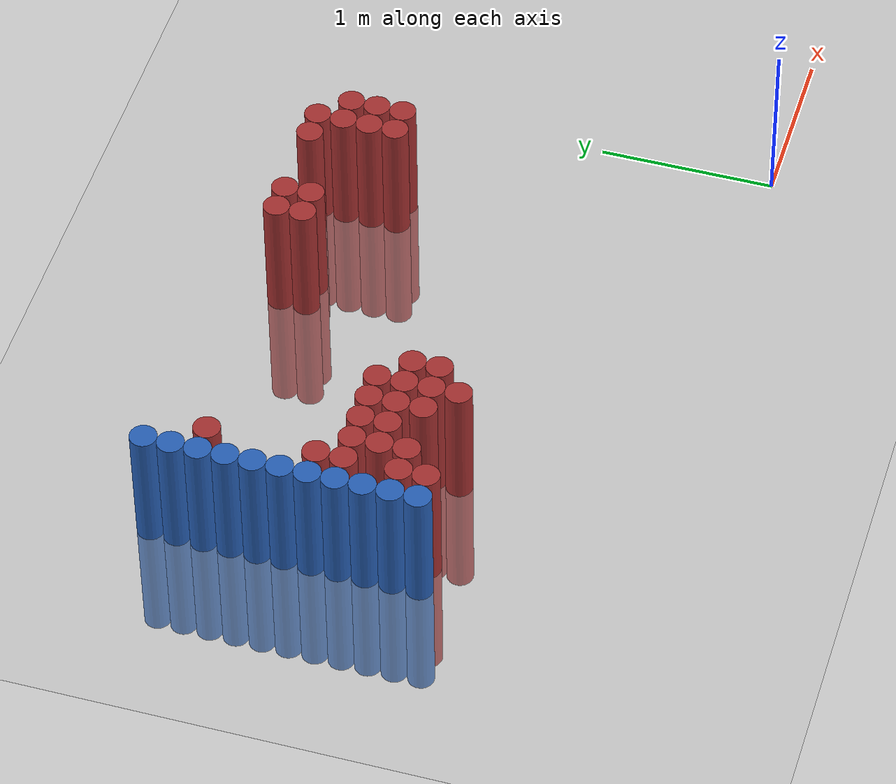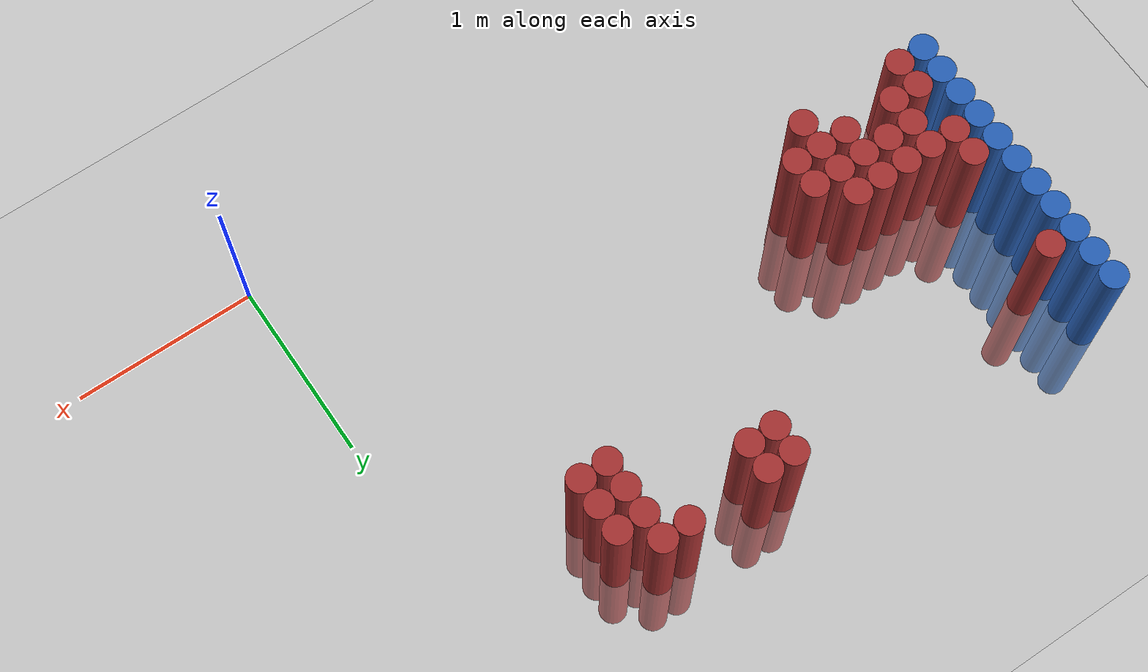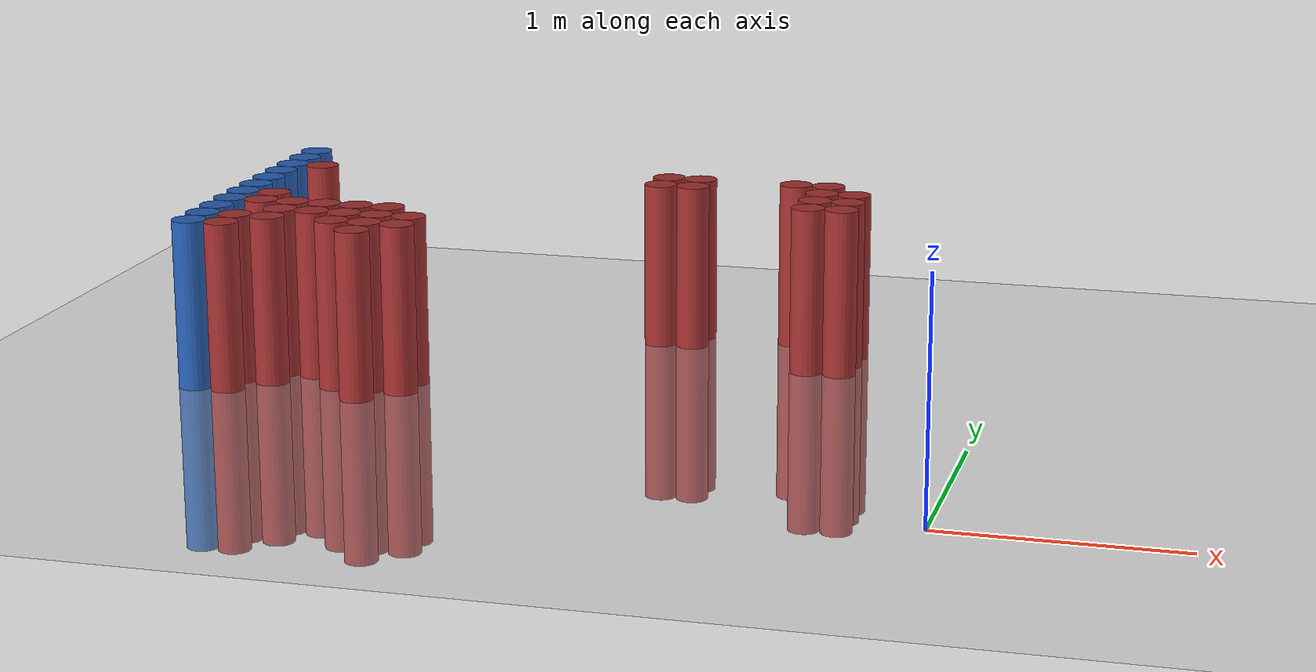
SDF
<sdf version="1.6">
 <world name="default">
  <model name="ground_plane">
   <static>1</static>
   <link name="link">
    <collision name="collision">
     <geometry><plane><normal>0 0 1</normal><size>100 100</size></plane></geometry>
     <surface><friction><ode><mu>100</mu><mu2>50</mu2></ode></friction></surface>
    </collision>
    <visual name="visual">
     <cast_shadows>0</cast_shadows>
     <geometry><plane><normal>0 0 1</normal><size>100 100</size></plane></geometry>
     <material>
      <script><uri>file://media/materials/scripts/gazebo.material</uri><name>Gazebo/Grey</name></script>
     </material>
    </visual>
   </link>
  </model>
  <model name="unit_cylinder_129">
   <static>1</static>
   <pose>-3.425000 1.075000 0.000000 0.000000 0.000000 0.000000</pose>
   <link name="link">
    <inertial>
     <mass>1</mass>
     <inertia><ixx>0.145833</ixx><ixy>0</ixy><ixz>0</ixz><iyy>0.145833</iyy><iyz>0</iyz><izz>0.125</izz></inertia>
    </inertial>
    <collision name="collision">
     <geometry><cylinder><radius>0.075000</radius><length>1.5</length></cylinder></geometry>
    </collision>
    <visual name="visual">
     <geometry><cylinder><radius>0.075000</radius><length>1.5</length></cylinder></geometry>
     <material>
      <ambient>0.152000 0.379000 0.720000 1</ambient>
      <diffuse>0.152000 0.379000 0.720000 1</diffuse>
     </material>
     <material>
      <script><name>Gazebo/Grey</name><uri>file://media/materials/scripts/gazebo.material</uri></script>
     </material>
    </visual>
   </link>
  </model>
  <model name="unit_cylinder_131">
   <static>1</static>
   <pose>-3.425000 1.225000 0.000000 0.000000 0.000000 0.000000</pose>
   <link name="link">
    <inertial>
     <mass>1</mass>
     <inertia><ixx>0.145833</ixx><ixy>0</ixy><ixz>0</ixz><iyy>0.145833</iyy><iyz>0</iyz><izz>0.125</izz></inertia>
    </inertial>
    <collision name="collision">
     <geometry><cylinder><radius>0.075000</radius><length>1.5</length></cylinder></geometry>
    </collision>
    <visual name="visual">
     <geometry><cylinder><radius>0.075000</radius><length>1.5</length></cylinder></geometry>
     <material>
      <ambient>0.152000 0.379000 0.720000 1</ambient>
      <diffuse>0.152000 0.379000 0.720000 1</diffuse>
     </material>
     <material>
      <script><name>Gazebo/Grey</name><uri>file://media/materials/scripts/gazebo.material</uri></script>
     </material>
    </visual>
   </link>
  </model>
  <model name="unit_cylinder_133">
   <static>1</static>
   <pose>-3.425000 1.375000 0.000000 0.000000 0.000000 0.000000</pose>
   <link name="link">
    <inertial>
     <mass>1</mass>
     <inertia><ixx>0.145833</ixx><ixy>0</ixy><ixz>0</ixz><iyy>0.145833</iyy><iyz>0</iyz><izz>0.125</izz></inertia>
    </inertial>
    <collision name="collision">
     <geometry><cylinder><radius>0.075000</radius><length>1.5</length></cylinder></geometry>
    </collision>
    <visual name="visual">
     <geometry><cylinder><radius>0.075000</radius><length>1.5</length></cylinder></geometry>
     <material>
      <ambient>0.152000 0.379000 0.720000 1</ambient>
      <diffuse>0.152000 0.379000 0.720000 1</diffuse>
     </material>
     <material>
      <script><name>Gazebo/Grey</name><uri>file://media/materials/scripts/gazebo.material</uri></script>
     </material>
    </visual>
   </link>
  </model>
  <model name="unit_cylinder_135">
   <static>1</static>
   <pose>-3.425000 1.525000 0.000000 0.000000 0.000000 0.000000</pose>
   <link name="link">
    <inertial>
     <mass>1</mass>
     <inertia><ixx>0.145833</ixx><ixy>0</ixy><ixz>0</ixz><iyy>0.145833</iyy><iyz>0</iyz><izz>0.125</izz></inertia>
    </inertial>
    <collision name="collision">
     <geometry><cylinder><radius>0.075000</radius><length>1.5</length></cylinder></geometry>
    </collision>
    <visual name="visual">
     <geometry><cylinder><radius>0.075000</radius><length>1.5</length></cylinder></geometry>
     <material>
      <ambient>0.152000 0.379000 0.720000 1</ambient>
      <diffuse>0.152000 0.379000 0.720000 1</diffuse>
     </material>
     <material>
      <script><name>Gazebo/Grey</name><uri>file://media/materials/scripts/gazebo.material</uri></script>
     </material>
    </visual>
   </link>
  </model>
  <model name="unit_cylinder_137">
   <static>1</static>
   <pose>-3.425000 1.675000 0.000000 0.000000 0.000000 0.000000</pose>
   <link name="link">
    <inertial>
     <mass>1</mass>
     <inertia><ixx>0.145833</ixx><ixy>0</ixy><ixz>0</ixz><iyy>0.145833</iyy><iyz>0</iyz><izz>0.125</izz></inertia>
    </inertial>
    <collision name="collision">
     <geometry><cylinder><radius>0.075000</radius><length>1.5</length></cylinder></geometry>
    </collision>
    <visual name="visual">
     <geometry><cylinder><radius>0.075000</radius><length>1.5</length></cylinder></geometry>
     <material>
      <ambient>0.152000 0.379000 0.720000 1</ambient>
      <diffuse>0.152000 0.379000 0.720000 1</diffuse>
     </material>
     <material>
      <script><name>Gazebo/Grey</name><uri>file://media/materials/scripts/gazebo.material</uri></script>
     </material>
    </visual>
   </link>
  </model>
  <model name="unit_cylinder_139">
   <static>1</static>
   <pose>-3.425000 1.825000 0.000000 0.000000 0.000000 0.000000</pose>
   <link name="link">
    <inertial>
     <mass>1</mass>
     <inertia><ixx>0.145833</ixx><ixy>0</ixy><ixz>0</ixz><iyy>0.145833</iyy><iyz>0</iyz><izz>0.125</izz></inertia>
    </inertial>
    <collision name="collision">
     <geometry><cylinder><radius>0.075000</radius><length>1.5</length></cylinder></geometry>
    </collision>
    <visual name="visual">
     <geometry><cylinder><radius>0.075000</radius><length>1.5</length></cylinder></geometry>
     <material>
      <ambient>0.152000 0.379000 0.720000 1</ambient>
      <diffuse>0.152000 0.379000 0.720000 1</diffuse>
     </material>
     <material>
      <script><name>Gazebo/Grey</name><uri>file://media/materials/scripts/gazebo.material</uri></script>
     </material>
    </visual>
   </link>
  </model>
  <model name="unit_cylinder_141">
   <static>1</static>
   <pose>-3.425000 1.975000 0.000000 0.000000 0.000000 0.000000</pose>
   <link name="link">
    <inertial>
     <mass>1</mass>
     <inertia><ixx>0.145833</ixx><ixy>0</ixy><ixz>0</ixz><iyy>0.145833</iyy><iyz>0</iyz><izz>0.125</izz></inertia>
    </inertial>
    <collision name="collision">
     <geometry><cylinder><radius>0.075000</radius><length>1.5</length></cylinder></geometry>
    </collision>
    <visual name="visual">
     <geometry><cylinder><radius>0.075000</radius><length>1.5</length></cylinder></geometry>
     <material>
      <ambient>0.152000 0.379000 0.720000 1</ambient>
      <diffuse>0.152000 0.379000 0.720000 1</diffuse>
     </material>
     <material>
      <script><name>Gazebo/Grey</name><uri>file://media/materials/scripts/gazebo.material</uri></script>
     </material>
    </visual>
   </link>
  </model>
  <model name="unit_cylinder_143">
   <static>1</static>
   <pose>-3.425000 2.125000 0.000000 0.000000 0.000000 0.000000</pose>
   <link name="link">
    <inertial>
     <mass>1</mass>
     <inertia><ixx>0.145833</ixx><ixy>0</ixy><ixz>0</ixz><iyy>0.145833</iyy><iyz>0</iyz><izz>0.125</izz></inertia>
    </inertial>
    <collision name="collision">
     <geometry><cylinder><radius>0.075000</radius><length>1.5</length></cylinder></geometry>
    </collision>
    <visual name="visual">
     <geometry><cylinder><radius>0.075000</radius><length>1.5</length></cylinder></geometry>
     <material>
      <ambient>0.152000 0.379000 0.720000 1</ambient>
      <diffuse>0.152000 0.379000 0.720000 1</diffuse>
     </material>
     <material>
      <script><name>Gazebo/Grey</name><uri>file://media/materials/scripts/gazebo.material</uri></script>
     </material>
    </visual>
   </link>
  </model>
  <model name="unit_cylinder_145">
   <static>1</static>
   <pose>-3.425000 2.275000 0.000000 0.000000 0.000000 0.000000</pose>
   <link name="link">
    <inertial>
     <mass>1</mass>
     <inertia><ixx>0.145833</ixx><ixy>0</ixy><ixz>0</ixz><iyy>0.145833</iyy><iyz>0</iyz><izz>0.125</izz></inertia>
    </inertial>
    <collision name="collision">
     <geometry><cylinder><radius>0.075000</radius><length>1.5</length></cylinder></geometry>
    </collision>
    <visual name="visual">
     <geometry><cylinder><radius>0.075000</radius><length>1.5</length></cylinder></geometry>
     <material>
      <ambient>0.152000 0.379000 0.720000 1</ambient>
      <diffuse>0.152000 0.379000 0.720000 1</diffuse>
     </material>
     <material>
      <script><name>Gazebo/Grey</name><uri>file://media/materials/scripts/gazebo.material</uri></script>
     </material>
    </visual>
   </link>
  </model>
  <model name="unit_cylinder_147">
   <static>1</static>
   <pose>-3.425000 2.425000 0.000000 0.000000 0.000000 0.000000</pose>
   <link name="link">
    <inertial>
     <mass>1</mass>
     <inertia><ixx>0.145833</ixx><ixy>0</ixy><ixz>0</ixz><iyy>0.145833</iyy><iyz>0</iyz><izz>0.125</izz></inertia>
    </inertial>
    <collision name="collision">
     <geometry><cylinder><radius>0.075000</radius><length>1.5</length></cylinder></geometry>
    </collision>
    <visual name="visual">
     <geometry><cylinder><radius>0.075000</radius><length>1.5</length></cylinder></geometry>
     <material>
      <ambient>0.152000 0.379000 0.720000 1</ambient>
      <diffuse>0.152000 0.379000 0.720000 1</diffuse>
     </material>
     <material>
      <script><name>Gazebo/Grey</name><uri>file://media/materials/scripts/gazebo.material</uri></script>
     </material>
    </visual>
   </link>
  </model>
  <model name="unit_cylinder_149">
   <static>1</static>
   <pose>-3.425000 2.575000 0.000000 0.000000 0.000000 0.000000</pose>
   <link name="link">
    <inertial>
     <mass>1</mass>
     <inertia><ixx>0.145833</ixx><ixy>0</ixy><ixz>0</ixz><iyy>0.145833</iyy><iyz>0</iyz><izz>0.125</izz></inertia>
    </inertial>
    <collision name="collision">
     <geometry><cylinder><radius>0.075000</radius><length>1.5</length></cylinder></geometry>
    </collision>
    <visual name="visual">
     <geometry><cylinder><radius>0.075000</radius><length>1.5</length></cylinder></geometry>
     <material>
      <ambient>0.152000 0.379000 0.720000 1</ambient>
      <diffuse>0.152000 0.379000 0.720000 1</diffuse>
     </material>
     <material>
      <script><name>Gazebo/Grey</name><uri>file://media/materials/scripts/gazebo.material</uri></script>
     </material>
    </visual>
   </link>
  </model>
  <model name="unit_cylinder_228">
   <static>1</static>
   <pose>-3.425000 1.075000 0.000000 0.000000 0.000000 0.000000</pose>
   <link name="link">
    <inertial>
     <mass>1</mass>
     <inertia><ixx>0.145833</ixx><ixy>0</ixy><ixz>0</ixz><iyy>0.145833</iyy><iyz>0</iyz><izz>0.125</izz></inertia>
    </inertial>
    <collision name="collision">
     <geometry><cylinder><radius>0.075000</radius><length>1.5</length></cylinder></geometry>
    </collision>
    <visual name="visual">
     <geometry><cylinder><radius>0.075000</radius><length>1.5</length></cylinder></geometry>
     <material>
      <ambient>0.152000 0.379000 0.720000 1</ambient>
      <diffuse>0.152000 0.379000 0.720000 1</diffuse>
     </material>
     <material>
      <script><name>Gazebo/Grey</name><uri>file://media/materials/scripts/gazebo.material</uri></script>
     </material>
    </visual>
   </link>
  </model>
  <model name="unit_cylinder_229">
   <static>1</static>
   <pose>-3.425000 1.225000 0.000000 0.000000 0.000000 0.000000</pose>
   <link name="link">
    <inertial>
     <mass>1</mass>
     <inertia><ixx>0.145833</ixx><ixy>0</ixy><ixz>0</ixz><iyy>0.145833</iyy><iyz>0</iyz><izz>0.125</izz></inertia>
    </inertial>
    <collision name="collision">
     <geometry><cylinder><radius>0.075000</radius><length>1.5</length></cylinder></geometry>
    </collision>
    <visual name="visual">
     <geometry><cylinder><radius>0.075000</radius><length>1.5</length></cylinder></geometry>
     <material>
      <ambient>0.152000 0.379000 0.720000 1</ambient>
      <diffuse>0.152000 0.379000 0.720000 1</diffuse>
     </material>
     <material>
      <script><name>Gazebo/Grey</name><uri>file://media/materials/scripts/gazebo.material</uri></script>
     </material>
    </visual>
   </link>
  </model>
  <model name="unit_cylinder_230">
   <static>1</static>
   <pose>-3.425000 1.375000 0.000000 0.000000 0.000000 0.000000</pose>
   <link name="link">
    <inertial>
     <mass>1</mass>
     <inertia><ixx>0.145833</ixx><ixy>0</ixy><ixz>0</ixz><iyy>0.145833</iyy><iyz>0</iyz><izz>0.125</izz></inertia>
    </inertial>
    <collision name="collision">
     <geometry><cylinder><radius>0.075000</radius><length>1.5</length></cylinder></geometry>
    </collision>
    <visual name="visual">
     <geometry><cylinder><radius>0.075000</radius><length>1.5</length></cylinder></geometry>
     <material>
      <ambient>0.152000 0.379000 0.720000 1</ambient>
      <diffuse>0.152000 0.379000 0.720000 1</diffuse>
     </material>
     <material>
      <script><name>Gazebo/Grey</name><uri>file://media/materials/scripts/gazebo.material</uri></script>
     </material>
    </visual>
   </link>
  </model>
  <model name="unit_cylinder_231">
   <static>1</static>
   <pose>-3.425000 1.525000 0.000000 0.000000 0.000000 0.000000</pose>
   <link name="link">
    <inertial>
     <mass>1</mass>
     <inertia><ixx>0.145833</ixx><ixy>0</ixy><ixz>0</ixz><iyy>0.145833</iyy><iyz>0</iyz><izz>0.125</izz></inertia>
    </inertial>
    <collision name="collision">
     <geometry><cylinder><radius>0.075000</radius><length>1.5</length></cylinder></geometry>
    </collision>
    <visual name="visual">
     <geometry><cylinder><radius>0.075000</radius><length>1.5</length></cylinder></geometry>
     <material>
      <ambient>0.152000 0.379000 0.720000 1</ambient>
      <diffuse>0.152000 0.379000 0.720000 1</diffuse>
     </material>
     <material>
      <script><name>Gazebo/Grey</name><uri>file://media/materials/scripts/gazebo.material</uri></script>
     </material>
    </visual>
   </link>
  </model>
  <model name="unit_cylinder_232">
   <static>1</static>
   <pose>-3.425000 1.675000 0.000000 0.000000 0.000000 0.000000</pose>
   <link name="link">
    <inertial>
     <mass>1</mass>
     <inertia><ixx>0.145833</ixx><ixy>0</ixy><ixz>0</ixz><iyy>0.145833</iyy><iyz>0</iyz><izz>0.125</izz></inertia>
    </inertial>
    <collision name="collision">
     <geometry><cylinder><radius>0.075000</radius><length>1.5</length></cylinder></geometry>
    </collision>
    <visual name="visual">
     <geometry><cylinder><radius>0.075000</radius><length>1.5</length></cylinder></geometry>
     <material>
      <ambient>0.152000 0.379000 0.720000 1</ambient>
      <diffuse>0.152000 0.379000 0.720000 1</diffuse>
     </material>
     <material>
      <script><name>Gazebo/Grey</name><uri>file://media/materials/scripts/gazebo.material</uri></script>
     </material>
    </visual>
   </link>
  </model>
  <model name="unit_cylinder_233">
   <static>1</static>
   <pose>-3.425000 1.825000 0.000000 0.000000 0.000000 0.000000</pose>
   <link name="link">
    <inertial>
     <mass>1</mass>
     <inertia><ixx>0.145833</ixx><ixy>0</ixy><ixz>0</ixz><iyy>0.145833</iyy><iyz>0</iyz><izz>0.125</izz></inertia>
    </inertial>
    <collision name="collision">
     <geometry><cylinder><radius>0.075000</radius><length>1.5</length></cylinder></geometry>
    </collision>
    <visual name="visual">
     <geometry><cylinder><radius>0.075000</radius><length>1.5</length></cylinder></geometry>
     <material>
      <ambient>0.152000 0.379000 0.720000 1</ambient>
      <diffuse>0.152000 0.379000 0.720000 1</diffuse>
     </material>
     <material>
      <script><name>Gazebo/Grey</name><uri>file://media/materials/scripts/gazebo.material</uri></script>
     </material>
    </visual>
   </link>
  </model>
  <model name="unit_cylinder_234">
   <static>1</static>
   <pose>-3.425000 1.975000 0.000000 0.000000 0.000000 0.000000</pose>
   <link name="link">
    <inertial>
     <mass>1</mass>
     <inertia><ixx>0.145833</ixx><ixy>0</ixy><ixz>0</ixz><iyy>0.145833</iyy><iyz>0</iyz><izz>0.125</izz></inertia>
    </inertial>
    <collision name="collision">
     <geometry><cylinder><radius>0.075000</radius><length>1.5</length></cylinder></geometry>
    </collision>
    <visual name="visual">
     <geometry><cylinder><radius>0.075000</radius><length>1.5</length></cylinder></geometry>
     <material>
      <ambient>0.152000 0.379000 0.720000 1</ambient>
      <diffuse>0.152000 0.379000 0.720000 1</diffuse>
     </material>
     <material>
      <script><name>Gazebo/Grey</name><uri>file://media/materials/scripts/gazebo.material</uri></script>
     </material>
    </visual>
   </link>
  </model>
  <model name="unit_cylinder_235">
   <static>1</static>
   <pose>-3.425000 2.125000 0.000000 0.000000 0.000000 0.000000</pose>
   <link name="link">
    <inertial>
     <mass>1</mass>
     <inertia><ixx>0.145833</ixx><ixy>0</ixy><ixz>0</ixz><iyy>0.145833</iyy><iyz>0</iyz><izz>0.125</izz></inertia>
    </inertial>
    <collision name="collision">
     <geometry><cylinder><radius>0.075000</radius><length>1.5</length></cylinder></geometry>
    </collision>
    <visual name="visual">
     <geometry><cylinder><radius>0.075000</radius><length>1.5</length></cylinder></geometry>
     <material>
      <ambient>0.152000 0.379000 0.720000 1</ambient>
      <diffuse>0.152000 0.379000 0.720000 1</diffuse>
     </material>
     <material>
      <script><name>Gazebo/Grey</name><uri>file://media/materials/scripts/gazebo.material</uri></script>
     </material>
    </visual>
   </link>
  </model>
  <model name="unit_cylinder_236">
   <static>1</static>
   <pose>-3.425000 2.275000 0.000000 0.000000 0.000000 0.000000</pose>
   <link name="link">
    <inertial>
     <mass>1</mass>
     <inertia><ixx>0.145833</ixx><ixy>0</ixy><ixz>0</ixz><iyy>0.145833</iyy><iyz>0</iyz><izz>0.125</izz></inertia>
    </inertial>
    <collision name="collision">
     <geometry><cylinder><radius>0.075000</radius><length>1.5</length></cylinder></geometry>
    </collision>
    <visual name="visual">
     <geometry><cylinder><radius>0.075000</radius><length>1.5</length></cylinder></geometry>
     <material>
      <ambient>0.152000 0.379000 0.720000 1</ambient>
      <diffuse>0.152000 0.379000 0.720000 1</diffuse>
     </material>
     <material>
      <script><name>Gazebo/Grey</name><uri>file://media/materials/scripts/gazebo.material</uri></script>
     </material>
    </visual>
   </link>
  </model>
  <model name="unit_cylinder_237">
   <static>1</static>
   <pose>-3.425000 2.425000 0.000000 0.000000 0.000000 0.000000</pose>
   <link name="link">
    <inertial>
     <mass>1</mass>
     <inertia><ixx>0.145833</ixx><ixy>0</ixy><ixz>0</ixz><iyy>0.145833</iyy><iyz>0</iyz><izz>0.125</izz></inertia>
    </inertial>
    <collision name="collision">
     <geometry><cylinder><radius>0.075000</radius><length>1.5</length></cylinder></geometry>
    </collision>
    <visual name="visual">
     <geometry><cylinder><radius>0.075000</radius><length>1.5</length></cylinder></geometry>
     <material>
      <ambient>0.152000 0.379000 0.720000 1</ambient>
      <diffuse>0.152000 0.379000 0.720000 1</diffuse>
     </material>
     <material>
      <script><name>Gazebo/Grey</name><uri>file://media/materials/scripts/gazebo.material</uri></script>
     </material>
    </visual>
   </link>
  </model>
  <model name="unit_cylinder_238">
   <static>1</static>
   <pose>-3.425000 2.575000 0.000000 0.000000 0.000000 0.000000</pose>
   <link name="link">
    <inertial>
     <mass>1</mass>
     <inertia><ixx>0.145833</ixx><ixy>0</ixy><ixz>0</ixz><iyy>0.145833</iyy><iyz>0</iyz><izz>0.125</izz></inertia>
    </inertial>
    <collision name="collision">
     <geometry><cylinder><radius>0.075000</radius><length>1.5</length></cylinder></geometry>
    </collision>
    <visual name="visual">
     <geometry><cylinder><radius>0.075000</radius><length>1.5</length></cylinder></geometry>
     <material>
      <ambient>0.152000 0.379000 0.720000 1</ambient>
      <diffuse>0.152000 0.379000 0.720000 1</diffuse>
     </material>
     <material>
      <script><name>Gazebo/Grey</name><uri>file://media/materials/scripts/gazebo.material</uri></script>
     </material>
    </visual>
   </link>
  </model>
  <model name="unit_cylinder_266">
   <static>1</static>
   <pose>-3.275000 1.075000 0.000000 0.000000 0.000000 0.000000</pose>
   <link name="link">
    <inertial>
     <mass>1</mass>
     <inertia><ixx>0.145833</ixx><ixy>0</ixy><ixz>0</ixz><iyy>0.145833</iyy><iyz>0</iyz><izz>0.125</izz></inertia>
    </inertial>
    <collision name="collision">
     <geometry><cylinder><radius>0.075000</radius><length>1.5</length></cylinder></geometry>
    </collision>
    <visual name="visual">
     <geometry><cylinder><radius>0.075000</radius><length>1.5</length></cylinder></geometry>
     <material>
      <ambient>0.648000 0.192000 0.192000 1</ambient>
      <diffuse>0.648000 0.192000 0.192000 1</diffuse>
     </material>
     <material>
      <script><name>Gazebo/Grey</name><uri>file://media/materials/scripts/gazebo.material</uri></script>
     </material>
    </visual>
   </link>
  </model>
  <model name="unit_cylinder_267">
   <static>1</static>
   <pose>-3.275000 1.225000 0.000000 0.000000 0.000000 0.000000</pose>
   <link name="link">
    <inertial>
     <mass>1</mass>
     <inertia><ixx>0.145833</ixx><ixy>0</ixy><ixz>0</ixz><iyy>0.145833</iyy><iyz>0</iyz><izz>0.125</izz></inertia>
    </inertial>
    <collision name="collision">
     <geometry><cylinder><radius>0.075000</radius><length>1.5</length></cylinder></geometry>
    </collision>
    <visual name="visual">
     <geometry><cylinder><radius>0.075000</radius><length>1.5</length></cylinder></geometry>
     <material>
      <ambient>0.648000 0.192000 0.192000 1</ambient>
      <diffuse>0.648000 0.192000 0.192000 1</diffuse>
     </material>
     <material>
      <script><name>Gazebo/Grey</name><uri>file://media/materials/scripts/gazebo.material</uri></script>
     </material>
    </visual>
   </link>
  </model>
  <model name="unit_cylinder_268">
   <static>1</static>
   <pose>-3.275000 1.525000 0.000000 0.000000 0.000000 0.000000</pose>
   <link name="link">
    <inertial>
     <mass>1</mass>
     <inertia><ixx>0.145833</ixx><ixy>0</ixy><ixz>0</ixz><iyy>0.145833</iyy><iyz>0</iyz><izz>0.125</izz></inertia>
    </inertial>
    <collision name="collision">
     <geometry><cylinder><radius>0.075000</radius><length>1.5</length></cylinder></geometry>
    </collision>
    <visual name="visual">
     <geometry><cylinder><radius>0.075000</radius><length>1.5</length></cylinder></geometry>
     <material>
      <ambient>0.648000 0.192000 0.192000 1</ambient>
      <diffuse>0.648000 0.192000 0.192000 1</diffuse>
     </material>
     <material>
      <script><name>Gazebo/Grey</name><uri>file://media/materials/scripts/gazebo.material</uri></script>
     </material>
    </visual>
   </link>
  </model>
  <model name="unit_cylinder_269">
   <static>1</static>
   <pose>-3.275000 1.675000 0.000000 0.000000 0.000000 0.000000</pose>
   <link name="link">
    <inertial>
     <mass>1</mass>
     <inertia><ixx>0.145833</ixx><ixy>0</ixy><ixz>0</ixz><iyy>0.145833</iyy><iyz>0</iyz><izz>0.125</izz></inertia>
    </inertial>
    <collision name="collision">
     <geometry><cylinder><radius>0.075000</radius><length>1.5</length></cylinder></geometry>
    </collision>
    <visual name="visual">
     <geometry><cylinder><radius>0.075000</radius><length>1.5</length></cylinder></geometry>
     <material>
      <ambient>0.648000 0.192000 0.192000 1</ambient>
      <diffuse>0.648000 0.192000 0.192000 1</diffuse>
     </material>
     <material>
      <script><name>Gazebo/Grey</name><uri>file://media/materials/scripts/gazebo.material</uri></script>
     </material>
    </visual>
   </link>
  </model>
  <model name="unit_cylinder_270">
   <static>1</static>
   <pose>-3.275000 2.275000 0.000000 0.000000 0.000000 0.000000</pose>
   <link name="link">
    <inertial>
     <mass>1</mass>
     <inertia><ixx>0.145833</ixx><ixy>0</ixy><ixz>0</ixz><iyy>0.145833</iyy><iyz>0</iyz><izz>0.125</izz></inertia>
    </inertial>
    <collision name="collision">
     <geometry><cylinder><radius>0.075000</radius><length>1.5</length></cylinder></geometry>
    </collision>
    <visual name="visual">
     <geometry><cylinder><radius>0.075000</radius><length>1.5</length></cylinder></geometry>
     <material>
      <ambient>0.648000 0.192000 0.192000 1</ambient>
      <diffuse>0.648000 0.192000 0.192000 1</diffuse>
     </material>
     <material>
      <script><name>Gazebo/Grey</name><uri>file://media/materials/scripts/gazebo.material</uri></script>
     </material>
    </visual>
   </link>
  </model>
  <model name="unit_cylinder_287">
   <static>1</static>
   <pose>-3.125000 1.225000 0.000000 0.000000 0.000000 0.000000</pose>
   <link name="link">
    <inertial>
     <mass>1</mass>
     <inertia><ixx>0.145833</ixx><ixy>0</ixy><ixz>0</ixz><iyy>0.145833</iyy><iyz>0</iyz><izz>0.125</izz></inertia>
    </inertial>
    <collision name="collision">
     <geometry><cylinder><radius>0.075000</radius><length>1.5</length></cylinder></geometry>
    </collision>
    <visual name="visual">
     <geometry><cylinder><radius>0.075000</radius><length>1.5</length></cylinder></geometry>
     <material>
      <ambient>0.648000 0.192000 0.192000 1</ambient>
      <diffuse>0.648000 0.192000 0.192000 1</diffuse>
     </material>
     <material>
      <script><name>Gazebo/Grey</name><uri>file://media/materials/scripts/gazebo.material</uri></script>
     </material>
    </visual>
   </link>
  </model>
  <model name="unit_cylinder_288">
   <static>1</static>
   <pose>-3.125000 1.375000 0.000000 0.000000 0.000000 0.000000</pose>
   <link name="link">
    <inertial>
     <mass>1</mass>
     <inertia><ixx>0.145833</ixx><ixy>0</ixy><ixz>0</ixz><iyy>0.145833</iyy><iyz>0</iyz><izz>0.125</izz></inertia>
    </inertial>
    <collision name="collision">
     <geometry><cylinder><radius>0.075000</radius><length>1.5</length></cylinder></geometry>
    </collision>
    <visual name="visual">
     <geometry><cylinder><radius>0.075000</radius><length>1.5</length></cylinder></geometry>
     <material>
      <ambient>0.648000 0.192000 0.192000 1</ambient>
      <diffuse>0.648000 0.192000 0.192000 1</diffuse>
     </material>
     <material>
      <script><name>Gazebo/Grey</name><uri>file://media/materials/scripts/gazebo.material</uri></script>
     </material>
    </visual>
   </link>
  </model>
  <model name="unit_cylinder_289">
   <static>1</static>
   <pose>-3.125000 1.525000 0.000000 0.000000 0.000000 0.000000</pose>
   <link name="link">
    <inertial>
     <mass>1</mass>
     <inertia><ixx>0.145833</ixx><ixy>0</ixy><ixz>0</ixz><iyy>0.145833</iyy><iyz>0</iyz><izz>0.125</izz></inertia>
    </inertial>
    <collision name="collision">
     <geometry><cylinder><radius>0.075000</radius><length>1.5</length></cylinder></geometry>
    </collision>
    <visual name="visual">
     <geometry><cylinder><radius>0.075000</radius><length>1.5</length></cylinder></geometry>
     <material>
      <ambient>0.648000 0.192000 0.192000 1</ambient>
      <diffuse>0.648000 0.192000 0.192000 1</diffuse>
     </material>
     <material>
      <script><name>Gazebo/Grey</name><uri>file://media/materials/scripts/gazebo.material</uri></script>
     </material>
    </visual>
   </link>
  </model>
  <model name="unit_cylinder_297">
   <static>1</static>
   <pose>-2.975000 1.375000 0.000000 0.000000 0.000000 0.000000</pose>
   <link name="link">
    <inertial>
     <mass>1</mass>
     <inertia><ixx>0.145833</ixx><ixy>0</ixy><ixz>0</ixz><iyy>0.145833</iyy><iyz>0</iyz><izz>0.125</izz></inertia>
    </inertial>
    <collision name="collision">
     <geometry><cylinder><radius>0.075000</radius><length>1.5</length></cylinder></geometry>
    </collision>
    <visual name="visual">
     <geometry><cylinder><radius>0.075000</radius><length>1.5</length></cylinder></geometry>
     <material>
      <ambient>0.648000 0.192000 0.192000 1</ambient>
      <diffuse>0.648000 0.192000 0.192000 1</diffuse>
     </material>
     <material>
      <script><name>Gazebo/Grey</name><uri>file://media/materials/scripts/gazebo.material</uri></script>
     </material>
    </visual>
   </link>
  </model>
  <model name="unit_cylinder_298">
   <static>1</static>
   <pose>-2.975000 1.525000 0.000000 0.000000 0.000000 0.000000</pose>
   <link name="link">
    <inertial>
     <mass>1</mass>
     <inertia><ixx>0.145833</ixx><ixy>0</ixy><ixz>0</ixz><iyy>0.145833</iyy><iyz>0</iyz><izz>0.125</izz></inertia>
    </inertial>
    <collision name="collision">
     <geometry><cylinder><radius>0.075000</radius><length>1.5</length></cylinder></geometry>
    </collision>
    <visual name="visual">
     <geometry><cylinder><radius>0.075000</radius><length>1.5</length></cylinder></geometry>
     <material>
      <ambient>0.648000 0.192000 0.192000 1</ambient>
      <diffuse>0.648000 0.192000 0.192000 1</diffuse>
     </material>
     <material>
      <script><name>Gazebo/Grey</name><uri>file://media/materials/scripts/gazebo.material</uri></script>
     </material>
    </visual>
   </link>
  </model>
  <model name="unit_cylinder_302">
   <static>1</static>
   <pose>-2.825000 1.225000 0.000000 0.000000 0.000000 0.000000</pose>
   <link name="link">
    <inertial>
     <mass>1</mass>
     <inertia><ixx>0.145833</ixx><ixy>0</ixy><ixz>0</ixz><iyy>0.145833</iyy><iyz>0</iyz><izz>0.125</izz></inertia>
    </inertial>
    <collision name="collision">
     <geometry><cylinder><radius>0.075000</radius><length>1.5</length></cylinder></geometry>
    </collision>
    <visual name="visual">
     <geometry><cylinder><radius>0.075000</radius><length>1.5</length></cylinder></geometry>
     <material>
      <ambient>0.648000 0.192000 0.192000 1</ambient>
      <diffuse>0.648000 0.192000 0.192000 1</diffuse>
     </material>
     <material>
      <script><name>Gazebo/Grey</name><uri>file://media/materials/scripts/gazebo.material</uri></script>
     </material>
    </visual>
   </link>
  </model>
  <model name="unit_cylinder_303">
   <static>1</static>
   <pose>-2.825000 1.375000 0.000000 0.000000 0.000000 0.000000</pose>
   <link name="link">
    <inertial>
     <mass>1</mass>
     <inertia><ixx>0.145833</ixx><ixy>0</ixy><ixz>0</ixz><iyy>0.145833</iyy><iyz>0</iyz><izz>0.125</izz></inertia>
    </inertial>
    <collision name="collision">
     <geometry><cylinder><radius>0.075000</radius><length>1.5</length></cylinder></geometry>
    </collision>
    <visual name="visual">
     <geometry><cylinder><radius>0.075000</radius><length>1.5</length></cylinder></geometry>
     <material>
      <ambient>0.648000 0.192000 0.192000 1</ambient>
      <diffuse>0.648000 0.192000 0.192000 1</diffuse>
     </material>
     <material>
      <script><name>Gazebo/Grey</name><uri>file://media/materials/scripts/gazebo.material</uri></script>
     </material>
    </visual>
   </link>
  </model>
  <model name="unit_cylinder_304">
   <static>1</static>
   <pose>-2.825000 1.525000 0.000000 0.000000 0.000000 0.000000</pose>
   <link name="link">
    <inertial>
     <mass>1</mass>
     <inertia><ixx>0.145833</ixx><ixy>0</ixy><ixz>0</ixz><iyy>0.145833</iyy><iyz>0</iyz><izz>0.125</izz></inertia>
    </inertial>
    <collision name="collision">
     <geometry><cylinder><radius>0.075000</radius><length>1.5</length></cylinder></geometry>
    </collision>
    <visual name="visual">
     <geometry><cylinder><radius>0.075000</radius><length>1.5</length></cylinder></geometry>
     <material>
      <ambient>0.648000 0.192000 0.192000 1</ambient>
      <diffuse>0.648000 0.192000 0.192000 1</diffuse>
     </material>
     <material>
      <script><name>Gazebo/Grey</name><uri>file://media/materials/scripts/gazebo.material</uri></script>
     </material>
    </visual>
   </link>
  </model>
  <model name="unit_cylinder_309">
   <static>1</static>
   <pose>-2.675000 1.075000 0.000000 0.000000 0.000000 0.000000</pose>
   <link name="link">
    <inertial>
     <mass>1</mass>
     <inertia><ixx>0.145833</ixx><ixy>0</ixy><ixz>0</ixz><iyy>0.145833</iyy><iyz>0</iyz><izz>0.125</izz></inertia>
    </inertial>
    <collision name="collision">
     <geometry><cylinder><radius>0.075000</radius><length>1.5</length></cylinder></geometry>
    </collision>
    <visual name="visual">
     <geometry><cylinder><radius>0.075000</radius><length>1.5</length></cylinder></geometry>
     <material>
      <ambient>0.648000 0.192000 0.192000 1</ambient>
      <diffuse>0.648000 0.192000 0.192000 1</diffuse>
     </material>
     <material>
      <script><name>Gazebo/Grey</name><uri>file://media/materials/scripts/gazebo.material</uri></script>
     </material>
    </visual>
   </link>
  </model>
  <model name="unit_cylinder_310">
   <static>1</static>
   <pose>-2.675000 1.225000 0.000000 0.000000 0.000000 0.000000</pose>
   <link name="link">
    <inertial>
     <mass>1</mass>
     <inertia><ixx>0.145833</ixx><ixy>0</ixy><ixz>0</ixz><iyy>0.145833</iyy><iyz>0</iyz><izz>0.125</izz></inertia>
    </inertial>
    <collision name="collision">
     <geometry><cylinder><radius>0.075000</radius><length>1.5</length></cylinder></geometry>
    </collision>
    <visual name="visual">
     <geometry><cylinder><radius>0.075000</radius><length>1.5</length></cylinder></geometry>
     <material>
      <ambient>0.648000 0.192000 0.192000 1</ambient>
      <diffuse>0.648000 0.192000 0.192000 1</diffuse>
     </material>
     <material>
      <script><name>Gazebo/Grey</name><uri>file://media/materials/scripts/gazebo.material</uri></script>
     </material>
    </visual>
   </link>
  </model>
  <model name="unit_cylinder_311">
   <static>1</static>
   <pose>-2.675000 1.375000 0.000000 0.000000 0.000000 0.000000</pose>
   <link name="link">
    <inertial>
     <mass>1</mass>
     <inertia><ixx>0.145833</ixx><ixy>0</ixy><ixz>0</ixz><iyy>0.145833</iyy><iyz>0</iyz><izz>0.125</izz></inertia>
    </inertial>
    <collision name="collision">
     <geometry><cylinder><radius>0.075000</radius><length>1.5</length></cylinder></geometry>
    </collision>
    <visual name="visual">
     <geometry><cylinder><radius>0.075000</radius><length>1.5</length></cylinder></geometry>
     <material>
      <ambient>0.648000 0.192000 0.192000 1</ambient>
      <diffuse>0.648000 0.192000 0.192000 1</diffuse>
     </material>
     <material>
      <script><name>Gazebo/Grey</name><uri>file://media/materials/scripts/gazebo.material</uri></script>
     </material>
    </visual>
   </link>
  </model>
  <model name="unit_cylinder_312">
   <static>1</static>
   <pose>-2.675000 1.525000 0.000000 0.000000 0.000000 0.000000</pose>
   <link name="link">
    <inertial>
     <mass>1</mass>
     <inertia><ixx>0.145833</ixx><ixy>0</ixy><ixz>0</ixz><iyy>0.145833</iyy><iyz>0</iyz><izz>0.125</izz></inertia>
    </inertial>
    <collision name="collision">
     <geometry><cylinder><radius>0.075000</radius><length>1.5</length></cylinder></geometry>
    </collision>
    <visual name="visual">
     <geometry><cylinder><radius>0.075000</radius><length>1.5</length></cylinder></geometry>
     <material>
      <ambient>0.648000 0.192000 0.192000 1</ambient>
      <diffuse>0.648000 0.192000 0.192000 1</diffuse>
     </material>
     <material>
      <script><name>Gazebo/Grey</name><uri>file://media/materials/scripts/gazebo.material</uri></script>
     </material>
    </visual>
   </link>
  </model>
  <model name="unit_cylinder_321">
   <static>1</static>
   <pose>-2.525000 1.225000 0.000000 0.000000 0.000000 0.000000</pose>
   <link name="link">
    <inertial>
     <mass>1</mass>
     <inertia><ixx>0.145833</ixx><ixy>0</ixy><ixz>0</ixz><iyy>0.145833</iyy><iyz>0</iyz><izz>0.125</izz></inertia>
    </inertial>
    <collision name="collision">
     <geometry><cylinder><radius>0.075000</radius><length>1.5</length></cylinder></geometry>
    </collision>
    <visual name="visual">
     <geometry><cylinder><radius>0.075000</radius><length>1.5</length></cylinder></geometry>
     <material>
      <ambient>0.648000 0.192000 0.192000 1</ambient>
      <diffuse>0.648000 0.192000 0.192000 1</diffuse>
     </material>
     <material>
      <script><name>Gazebo/Grey</name><uri>file://media/materials/scripts/gazebo.material</uri></script>
     </material>
    </visual>
   </link>
  </model>
  <model name="unit_cylinder_322">
   <static>1</static>
   <pose>-2.525000 1.375000 0.000000 0.000000 0.000000 0.000000</pose>
   <link name="link">
    <inertial>
     <mass>1</mass>
     <inertia><ixx>0.145833</ixx><ixy>0</ixy><ixz>0</ixz><iyy>0.145833</iyy><iyz>0</iyz><izz>0.125</izz></inertia>
    </inertial>
    <collision name="collision">
     <geometry><cylinder><radius>0.075000</radius><length>1.5</length></cylinder></geometry>
    </collision>
    <visual name="visual">
     <geometry><cylinder><radius>0.075000</radius><length>1.5</length></cylinder></geometry>
     <material>
      <ambient>0.648000 0.192000 0.192000 1</ambient>
      <diffuse>0.648000 0.192000 0.192000 1</diffuse>
     </material>
     <material>
      <script><name>Gazebo/Grey</name><uri>file://media/materials/scripts/gazebo.material</uri></script>
     </material>
    </visual>
   </link>
  </model>
  <model name="unit_cylinder_355">
   <static>1</static>
   <pose>-1.625000 2.275000 0.000000 0.000000 0.000000 0.000000</pose>
   <link name="link">
    <inertial>
     <mass>1</mass>
     <inertia><ixx>0.145833</ixx><ixy>0</ixy><ixz>0</ixz><iyy>0.145833</iyy><iyz>0</iyz><izz>0.125</izz></inertia>
    </inertial>
    <collision name="collision">
     <geometry><cylinder><radius>0.075000</radius><length>1.5</length></cylinder></geometry>
    </collision>
    <visual name="visual">
     <geometry><cylinder><radius>0.075000</radius><length>1.5</length></cylinder></geometry>
     <material>
      <ambient>0.648000 0.192000 0.192000 1</ambient>
      <diffuse>0.648000 0.192000 0.192000 1</diffuse>
     </material>
     <material>
      <script><name>Gazebo/Grey</name><uri>file://media/materials/scripts/gazebo.material</uri></script>
     </material>
    </visual>
   </link>
  </model>
  <model name="unit_cylinder_356">
   <static>1</static>
   <pose>-1.625000 2.425000 0.000000 0.000000 0.000000 0.000000</pose>
   <link name="link">
    <inertial>
     <mass>1</mass>
     <inertia><ixx>0.145833</ixx><ixy>0</ixy><ixz>0</ixz><iyy>0.145833</iyy><iyz>0</iyz><izz>0.125</izz></inertia>
    </inertial>
    <collision name="collision">
     <geometry><cylinder><radius>0.075000</radius><length>1.5</length></cylinder></geometry>
    </collision>
    <visual name="visual">
     <geometry><cylinder><radius>0.075000</radius><length>1.5</length></cylinder></geometry>
     <material>
      <ambient>0.648000 0.192000 0.192000 1</ambient>
      <diffuse>0.648000 0.192000 0.192000 1</diffuse>
     </material>
     <material>
      <script><name>Gazebo/Grey</name><uri>file://media/materials/scripts/gazebo.material</uri></script>
     </material>
    </visual>
   </link>
  </model>
  <model name="unit_cylinder_365">
   <static>1</static>
   <pose>-1.475000 2.275000 0.000000 0.000000 0.000000 0.000000</pose>
   <link name="link">
    <inertial>
     <mass>1</mass>
     <inertia><ixx>0.145833</ixx><ixy>0</ixy><ixz>0</ixz><iyy>0.145833</iyy><iyz>0</iyz><izz>0.125</izz></inertia>
    </inertial>
    <collision name="collision">
     <geometry><cylinder><radius>0.075000</radius><length>1.5</length></cylinder></geometry>
    </collision>
    <visual name="visual">
     <geometry><cylinder><radius>0.075000</radius><length>1.5</length></cylinder></geometry>
     <material>
      <ambient>0.648000 0.192000 0.192000 1</ambient>
      <diffuse>0.648000 0.192000 0.192000 1</diffuse>
     </material>
     <material>
      <script><name>Gazebo/Grey</name><uri>file://media/materials/scripts/gazebo.material</uri></script>
     </material>
    </visual>
   </link>
  </model>
  <model name="unit_cylinder_366">
   <static>1</static>
   <pose>-1.475000 2.425000 0.000000 0.000000 0.000000 0.000000</pose>
   <link name="link">
    <inertial>
     <mass>1</mass>
     <inertia><ixx>0.145833</ixx><ixy>0</ixy><ixz>0</ixz><iyy>0.145833</iyy><iyz>0</iyz><izz>0.125</izz></inertia>
    </inertial>
    <collision name="collision">
     <geometry><cylinder><radius>0.075000</radius><length>1.5</length></cylinder></geometry>
    </collision>
    <visual name="visual">
     <geometry><cylinder><radius>0.075000</radius><length>1.5</length></cylinder></geometry>
     <material>
      <ambient>0.648000 0.192000 0.192000 1</ambient>
      <diffuse>0.648000 0.192000 0.192000 1</diffuse>
     </material>
     <material>
      <script><name>Gazebo/Grey</name><uri>file://media/materials/scripts/gazebo.material</uri></script>
     </material>
    </visual>
   </link>
  </model>
  <model name="unit_cylinder_387">
   <static>1</static>
   <pose>-1.025000 2.425000 0.000000 0.000000 0.000000 0.000000</pose>
   <link name="link">
    <inertial>
     <mass>1</mass>
     <inertia><ixx>0.145833</ixx><ixy>0</ixy><ixz>0</ixz><iyy>0.145833</iyy><iyz>0</iyz><izz>0.125</izz></inertia>
    </inertial>
    <collision name="collision">
     <geometry><cylinder><radius>0.075000</radius><length>1.5</length></cylinder></geometry>
    </collision>
    <visual name="visual">
     <geometry><cylinder><radius>0.075000</radius><length>1.5</length></cylinder></geometry>
     <material>
      <ambient>0.648000 0.192000 0.192000 1</ambient>
      <diffuse>0.648000 0.192000 0.192000 1</diffuse>
     </material>
     <material>
      <script><name>Gazebo/Grey</name><uri>file://media/materials/scripts/gazebo.material</uri></script>
     </material>
    </visual>
   </link>
  </model>
  <model name="unit_cylinder_395">
   <static>1</static>
   <pose>-0.875000 1.975000 0.000000 0.000000 0.000000 0.000000</pose>
   <link name="link">
    <inertial>
     <mass>1</mass>
     <inertia><ixx>0.145833</ixx><ixy>0</ixy><ixz>0</ixz><iyy>0.145833</iyy><iyz>0</iyz><izz>0.125</izz></inertia>
    </inertial>
    <collision name="collision">
     <geometry><cylinder><radius>0.075000</radius><length>1.5</length></cylinder></geometry>
    </collision>
    <visual name="visual">
     <geometry><cylinder><radius>0.075000</radius><length>1.5</length></cylinder></geometry>
     <material>
      <ambient>0.648000 0.192000 0.192000 1</ambient>
      <diffuse>0.648000 0.192000 0.192000 1</diffuse>
     </material>
     <material>
      <script><name>Gazebo/Grey</name><uri>file://media/materials/scripts/gazebo.material</uri></script>
     </material>
    </visual>
   </link>
  </model>
  <model name="unit_cylinder_396">
   <static>1</static>
   <pose>-0.875000 2.125000 0.000000 0.000000 0.000000 0.000000</pose>
   <link name="link">
    <inertial>
     <mass>1</mass>
     <inertia><ixx>0.145833</ixx><ixy>0</ixy><ixz>0</ixz><iyy>0.145833</iyy><iyz>0</iyz><izz>0.125</izz></inertia>
    </inertial>
    <collision name="collision">
     <geometry><cylinder><radius>0.075000</radius><length>1.5</length></cylinder></geometry>
    </collision>
    <visual name="visual">
     <geometry><cylinder><radius>0.075000</radius><length>1.5</length></cylinder></geometry>
     <material>
      <ambient>0.648000 0.192000 0.192000 1</ambient>
      <diffuse>0.648000 0.192000 0.192000 1</diffuse>
     </material>
     <material>
      <script><name>Gazebo/Grey</name><uri>file://media/materials/scripts/gazebo.material</uri></script>
     </material>
    </visual>
   </link>
  </model>
  <model name="unit_cylinder_397">
   <static>1</static>
   <pose>-0.875000 2.275000 0.000000 0.000000 0.000000 0.000000</pose>
   <link name="link">
    <inertial>
     <mass>1</mass>
     <inertia><ixx>0.145833</ixx><ixy>0</ixy><ixz>0</ixz><iyy>0.145833</iyy><iyz>0</iyz><izz>0.125</izz></inertia>
    </inertial>
    <collision name="collision">
     <geometry><cylinder><radius>0.075000</radius><length>1.5</length></cylinder></geometry>
    </collision>
    <visual name="visual">
     <geometry><cylinder><radius>0.075000</radius><length>1.5</length></cylinder></geometry>
     <material>
      <ambient>0.648000 0.192000 0.192000 1</ambient>
      <diffuse>0.648000 0.192000 0.192000 1</diffuse>
     </material>
     <material>
      <script><name>Gazebo/Grey</name><uri>file://media/materials/scripts/gazebo.material</uri></script>
     </material>
    </visual>
   </link>
  </model>
  <model name="unit_cylinder_398">
   <static>1</static>
   <pose>-0.875000 2.425000 0.000000 0.000000 0.000000 0.000000</pose>
   <link name="link">
    <inertial>
     <mass>1</mass>
     <inertia><ixx>0.145833</ixx><ixy>0</ixy><ixz>0</ixz><iyy>0.145833</iyy><iyz>0</iyz><izz>0.125</izz></inertia>
    </inertial>
    <collision name="collision">
     <geometry><cylinder><radius>0.075000</radius><length>1.5</length></cylinder></geometry>
    </collision>
    <visual name="visual">
     <geometry><cylinder><radius>0.075000</radius><length>1.5</length></cylinder></geometry>
     <material>
      <ambient>0.648000 0.192000 0.192000 1</ambient>
      <diffuse>0.648000 0.192000 0.192000 1</diffuse>
     </material>
     <material>
      <script><name>Gazebo/Grey</name><uri>file://media/materials/scripts/gazebo.material</uri></script>
     </material>
    </visual>
   </link>
  </model>
  <model name="unit_cylinder_408">
   <static>1</static>
   <pose>-0.725000 1.975000 0.000000 0.000000 0.000000 0.000000</pose>
   <link name="link">
    <inertial>
     <mass>1</mass>
     <inertia><ixx>0.145833</ixx><ixy>0</ixy><ixz>0</ixz><iyy>0.145833</iyy><iyz>0</iyz><izz>0.125</izz></inertia>
    </inertial>
    <collision name="collision">
     <geometry><cylinder><radius>0.075000</radius><length>1.5</length></cylinder></geometry>
    </collision>
    <visual name="visual">
     <geometry><cylinder><radius>0.075000</radius><length>1.5</length></cylinder></geometry>
     <material>
      <ambient>0.648000 0.192000 0.192000 1</ambient>
      <diffuse>0.648000 0.192000 0.192000 1</diffuse>
     </material>
     <material>
      <script><name>Gazebo/Grey</name><uri>file://media/materials/scripts/gazebo.material</uri></script>
     </material>
    </visual>
   </link>
  </model>
  <model name="unit_cylinder_409">
   <static>1</static>
   <pose>-0.725000 2.125000 0.000000 0.000000 0.000000 0.000000</pose>
   <link name="link">
    <inertial>
     <mass>1</mass>
     <inertia><ixx>0.145833</ixx><ixy>0</ixy><ixz>0</ixz><iyy>0.145833</iyy><iyz>0</iyz><izz>0.125</izz></inertia>
    </inertial>
    <collision name="collision">
     <geometry><cylinder><radius>0.075000</radius><length>1.5</length></cylinder></geometry>
    </collision>
    <visual name="visual">
     <geometry><cylinder><radius>0.075000</radius><length>1.5</length></cylinder></geometry>
     <material>
      <ambient>0.648000 0.192000 0.192000 1</ambient>
      <diffuse>0.648000 0.192000 0.192000 1</diffuse>
     </material>
     <material>
      <script><name>Gazebo/Grey</name><uri>file://media/materials/scripts/gazebo.material</uri></script>
     </material>
    </visual>
   </link>
  </model>
  <model name="unit_cylinder_410">
   <static>1</static>
   <pose>-0.725000 2.275000 0.000000 0.000000 0.000000 0.000000</pose>
   <link name="link">
    <inertial>
     <mass>1</mass>
     <inertia><ixx>0.145833</ixx><ixy>0</ixy><ixz>0</ixz><iyy>0.145833</iyy><iyz>0</iyz><izz>0.125</izz></inertia>
    </inertial>
    <collision name="collision">
     <geometry><cylinder><radius>0.075000</radius><length>1.5</length></cylinder></geometry>
    </collision>
    <visual name="visual">
     <geometry><cylinder><radius>0.075000</radius><length>1.5</length></cylinder></geometry>
     <material>
      <ambient>0.648000 0.192000 0.192000 1</ambient>
      <diffuse>0.648000 0.192000 0.192000 1</diffuse>
     </material>
     <material>
      <script><name>Gazebo/Grey</name><uri>file://media/materials/scripts/gazebo.material</uri></script>
     </material>
    </visual>
   </link>
  </model>
 </world>
</sdf>
